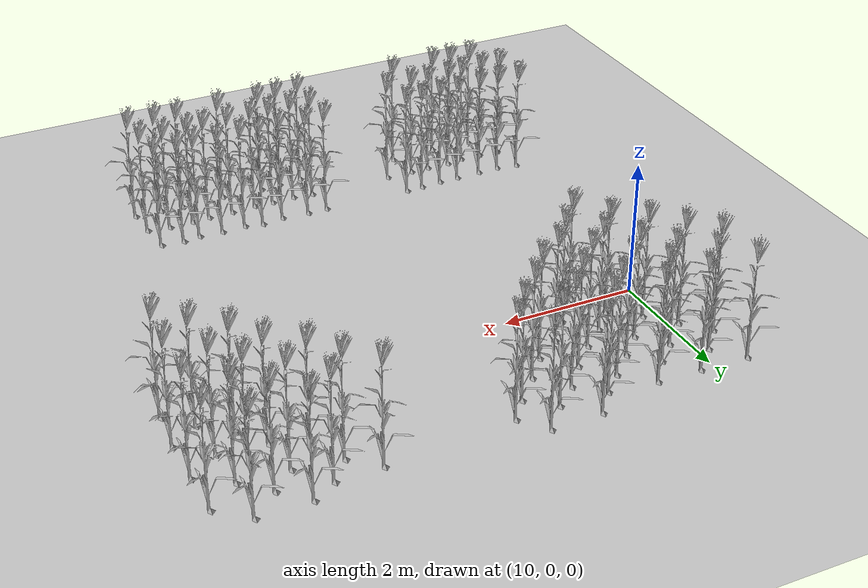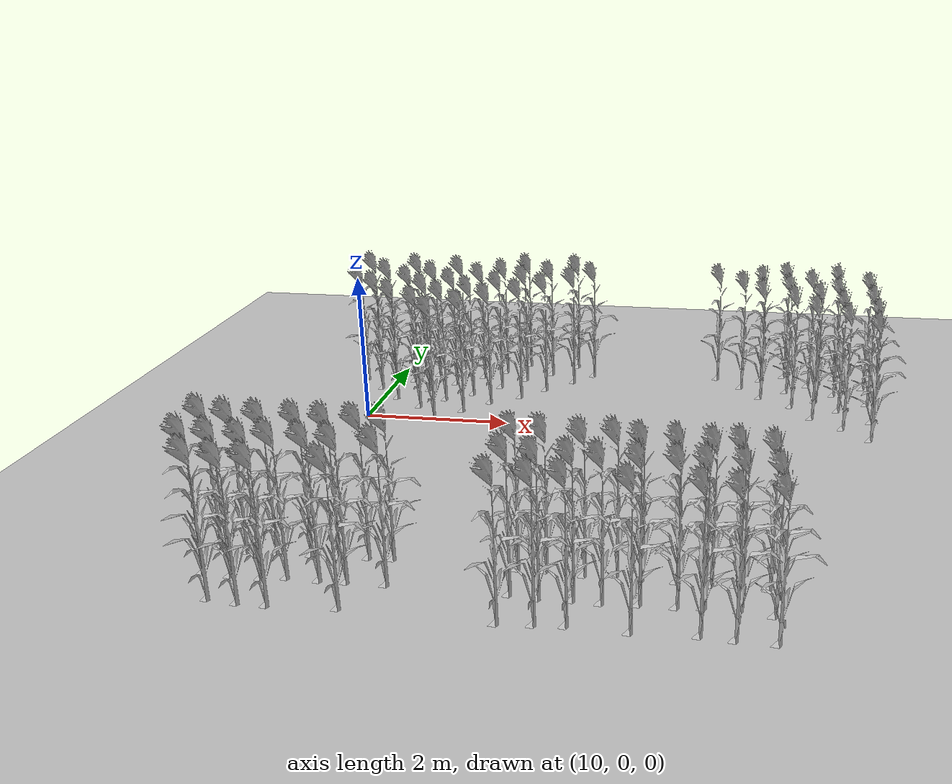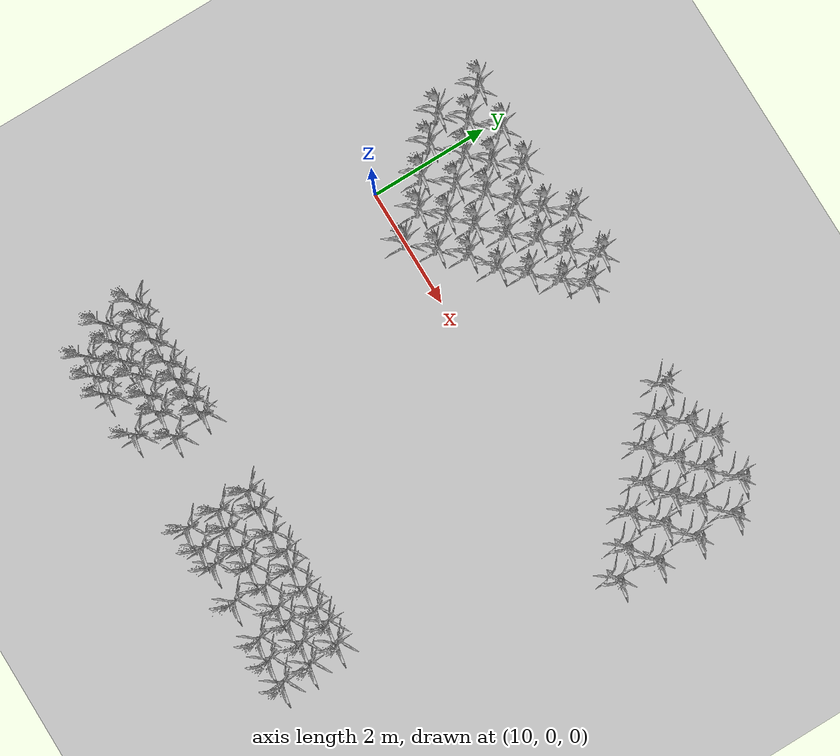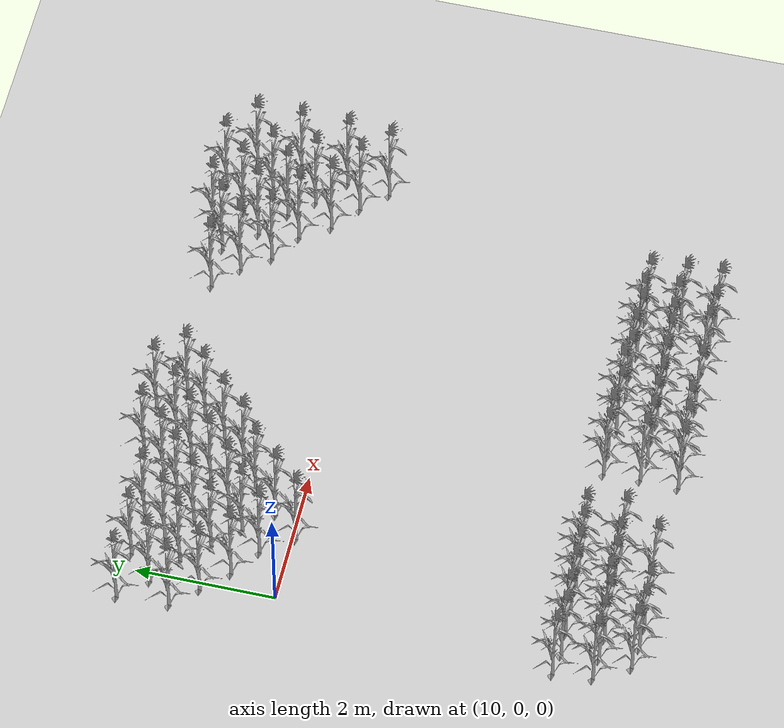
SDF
<sdf version="1.7">
 <world name="farmland_world">
  <model name="ground_plane">
   <static>1</static>
   <link name="link">
    <collision name="collision">
     <geometry><plane><normal>0 0 1</normal><size>40.0 40.0</size></plane></geometry>
     <surface><friction><ode><mu>100</mu><mu2>50</mu2></ode></friction></surface>
    </collision>
    <visual name="visual">
     <cast_shadows>0</cast_shadows>
     <geometry><plane><normal>0 0 1</normal><size>40.0 40.0</size></plane></geometry>
     <material>
      <script><uri>file://media/materials/scripts/gazebo.material</uri><name>Gazebo/Grey</name></script>
     </material>
    </visual>
   </link>
  </model>
  <model name="tree_3_294">
   <static>1</static>
   <link name="link">
    <collision name="collision">
     <geometry><mesh><uri>model://Corn_low_poly/corn.obj</uri><scale>1 1 1</scale></mesh></geometry>
     <surface><friction><ode><mu>100</mu><mu2>50</mu2></ode></friction></surface>
    </collision>
    <visual name="visual">
     <geometry><mesh><uri>model://Corn_low_poly/corn.obj</uri><scale>1 1 1</scale></mesh></geometry>
    </visual>
   </link>
   <pose>10.986549210475614 -0.030008866908524612 0 0 0 0</pose>
  </model>
  <model name="tree_3_295">
   <static>1</static>
   <link name="link">
    <collision name="collision">
     <geometry><mesh><uri>model://Corn_low_poly/corn.obj</uri><scale>1 1 1</scale></mesh></geometry>
     <surface><friction><ode><mu>100</mu><mu2>50</mu2></ode></friction></surface>
    </collision>
    <visual name="visual">
     <geometry><mesh><uri>model://Corn_low_poly/corn.obj</uri><scale>1 1 1</scale></mesh></geometry>
    </visual>
   </link>
   <pose>10.660420517018412 0.41029555244452454 0 0 0 0</pose>
  </model>
  <model name="tree_3_296">
   <static>1</static>
   <link name="link">
    <collision name="collision">
     <geometry><mesh><uri>model://Corn_low_poly/corn.obj</uri><scale>1 1 1</scale></mesh></geometry>
     <surface><friction><ode><mu>100</mu><mu2>50</mu2></ode></friction></surface>
    </collision>
    <visual name="visual">
     <geometry><mesh><uri>model://Corn_low_poly/corn.obj</uri><scale>1 1 1</scale></mesh></geometry>
    </visual>
   </link>
   <pose>10.239976879026237 0.7121741966434493 0 0 0 0</pose>
  </model>
  <model name="tree_3_297">
   <static>1</static>
   <link name="link">
    <collision name="collision">
     <geometry><mesh><uri>model://Corn_low_poly/corn.obj</uri><scale>1 1 1</scale></mesh></geometry>
     <surface><friction><ode><mu>100</mu><mu2>50</mu2></ode></friction></surface>
    </collision>
    <visual name="visual">
     <geometry><mesh><uri>model://Corn_low_poly/corn.obj</uri><scale>1 1 1</scale></mesh></geometry>
    </visual>
   </link>
   <pose>9.89017270644056 1.0724483898673165 0 0 0 0</pose>
  </model>
  <model name="tree_3_298">
   <static>1</static>
   <link name="link">
    <collision name="collision">
     <geometry><mesh><uri>model://Corn_low_poly/corn.obj</uri><scale>1 1 1</scale></mesh></geometry>
     <surface><friction><ode><mu>100</mu><mu2>50</mu2></ode></friction></surface>
    </collision>
    <visual name="visual">
     <geometry><mesh><uri>model://Corn_low_poly/corn.obj</uri><scale>1 1 1</scale></mesh></geometry>
    </visual>
   </link>
   <pose>9.55679092215532 1.423586690843827 0 0 0 0</pose>
  </model>
  <model name="tree_3_339">
   <static>1</static>
   <link name="link">
    <collision name="collision">
     <geometry><mesh><uri>model://Corn_low_poly/corn.obj</uri><scale>1 1 1</scale></mesh></geometry>
     <surface><friction><ode><mu>100</mu><mu2>50</mu2></ode></friction></surface>
    </collision>
    <visual name="visual">
     <geometry><mesh><uri>model://Corn_low_poly/corn.obj</uri><scale>1 1 1</scale></mesh></geometry>
    </visual>
   </link>
   <pose>11.314087523282714 0.3369047057182274 0 0 0 0</pose>
  </model>
  <model name="tree_3_340">
   <static>1</static>
   <link name="link">
    <collision name="collision">
     <geometry><mesh><uri>model://Corn_low_poly/corn.obj</uri><scale>1 1 1</scale></mesh></geometry>
     <surface><friction><ode><mu>100</mu><mu2>50</mu2></ode></friction></surface>
    </collision>
    <visual name="visual">
     <geometry><mesh><uri>model://Corn_low_poly/corn.obj</uri><scale>1 1 1</scale></mesh></geometry>
    </visual>
   </link>
   <pose>10.956666141173441 0.7326038631313926 0 0 0 0</pose>
  </model>
  <model name="tree_3_341">
   <static>1</static>
   <link name="link">
    <collision name="collision">
     <geometry><mesh><uri>model://Corn_low_poly/corn.obj</uri><scale>1 1 1</scale></mesh></geometry>
     <surface><friction><ode><mu>100</mu><mu2>50</mu2></ode></friction></surface>
    </collision>
    <visual name="visual">
     <geometry><mesh><uri>model://Corn_low_poly/corn.obj</uri><scale>1 1 1</scale></mesh></geometry>
    </visual>
   </link>
   <pose>10.615417674221428 1.0919759941359017 0 0 0 0</pose>
  </model>
  <model name="tree_3_342">
   <static>1</static>
   <link name="link">
    <collision name="collision">
     <geometry><mesh><uri>model://Corn_low_poly/corn.obj</uri><scale>1 1 1</scale></mesh></geometry>
     <surface><friction><ode><mu>100</mu><mu2>50</mu2></ode></friction></surface>
    </collision>
    <visual name="visual">
     <geometry><mesh><uri>model://Corn_low_poly/corn.obj</uri><scale>1 1 1</scale></mesh></geometry>
    </visual>
   </link>
   <pose>10.283951952846019 1.4558763011203195 0 0 0 0</pose>
  </model>
  <model name="tree_3_343">
   <static>1</static>
   <link name="link">
    <collision name="collision">
     <geometry><mesh><uri>model://Corn_low_poly/corn.obj</uri><scale>1 1 1</scale></mesh></geometry>
     <surface><friction><ode><mu>100</mu><mu2>50</mu2></ode></friction></surface>
    </collision>
    <visual name="visual">
     <geometry><mesh><uri>model://Corn_low_poly/corn.obj</uri><scale>1 1 1</scale></mesh></geometry>
    </visual>
   </link>
   <pose>9.872938468097058 1.7776033449475355 0 0 0 0</pose>
  </model>
  <model name="tree_3_344">
   <static>1</static>
   <link name="link">
    <collision name="collision">
     <geometry><mesh><uri>model://Corn_low_poly/corn.obj</uri><scale>1 1 1</scale></mesh></geometry>
     <surface><friction><ode><mu>100</mu><mu2>50</mu2></ode></friction></surface>
    </collision>
    <visual name="visual">
     <geometry><mesh><uri>model://Corn_low_poly/corn.obj</uri><scale>1 1 1</scale></mesh></geometry>
    </visual>
   </link>
   <pose>9.523073171963034 2.1662623942834838 0 0 0 0</pose>
  </model>
  <model name="tree_3_384">
   <static>1</static>
   <link name="link">
    <collision name="collision">
     <geometry><mesh><uri>model://Corn_low_poly/corn.obj</uri><scale>1 1 1</scale></mesh></geometry>
     <surface><friction><ode><mu>100</mu><mu2>50</mu2></ode></friction></surface>
    </collision>
    <visual name="visual">
     <geometry><mesh><uri>model://Corn_low_poly/corn.obj</uri><scale>1 1 1</scale></mesh></geometry>
    </visual>
   </link>
   <pose>11.631719376342067 0.7052724618388486 0 0 0 0</pose>
  </model>
  <model name="tree_3_385">
   <static>1</static>
   <link name="link">
    <collision name="collision">
     <geometry><mesh><uri>model://Corn_low_poly/corn.obj</uri><scale>1 1 1</scale></mesh></geometry>
     <surface><friction><ode><mu>100</mu><mu2>50</mu2></ode></friction></surface>
    </collision>
    <visual name="visual">
     <geometry><mesh><uri>model://Corn_low_poly/corn.obj</uri><scale>1 1 1</scale></mesh></geometry>
    </visual>
   </link>
   <pose>11.302284660369168 1.0111965982311883 0 0 0 0</pose>
  </model>
  <model name="tree_3_386">
   <static>1</static>
   <link name="link">
    <collision name="collision">
     <geometry><mesh><uri>model://Corn_low_poly/corn.obj</uri><scale>1 1 1</scale></mesh></geometry>
     <surface><friction><ode><mu>100</mu><mu2>50</mu2></ode></friction></surface>
    </collision>
    <visual name="visual">
     <geometry><mesh><uri>model://Corn_low_poly/corn.obj</uri><scale>1 1 1</scale></mesh></geometry>
    </visual>
   </link>
   <pose>10.948689903663446 1.4207163627651433 0 0 0 0</pose>
  </model>
  <model name="tree_3_387">
   <static>1</static>
   <link name="link">
    <collision name="collision">
     <geometry><mesh><uri>model://Corn_low_poly/corn.obj</uri><scale>1 1 1</scale></mesh></geometry>
     <surface><friction><ode><mu>100</mu><mu2>50</mu2></ode></friction></surface>
    </collision>
    <visual name="visual">
     <geometry><mesh><uri>model://Corn_low_poly/corn.obj</uri><scale>1 1 1</scale></mesh></geometry>
    </visual>
   </link>
   <pose>10.59459887928998 1.7473565881308837 0 0 0 0</pose>
  </model>
  <model name="tree_3_388">
   <static>1</static>
   <link name="link">
    <collision name="collision">
     <geometry><mesh><uri>model://Corn_low_poly/corn.obj</uri><scale>1 1 1</scale></mesh></geometry>
     <surface><friction><ode><mu>100</mu><mu2>50</mu2></ode></friction></surface>
    </collision>
    <visual name="visual">
     <geometry><mesh><uri>model://Corn_low_poly/corn.obj</uri><scale>1 1 1</scale></mesh></geometry>
    </visual>
   </link>
   <pose>10.24522446116887 2.1407802458436422 0 0 0 0</pose>
  </model>
  <model name="tree_3_429">
   <static>1</static>
   <link name="link">
    <collision name="collision">
     <geometry><mesh><uri>model://Corn_low_poly/corn.obj</uri><scale>1 1 1</scale></mesh></geometry>
     <surface><friction><ode><mu>100</mu><mu2>50</mu2></ode></friction></surface>
    </collision>
    <visual name="visual">
     <geometry><mesh><uri>model://Corn_low_poly/corn.obj</uri><scale>1 1 1</scale></mesh></geometry>
    </visual>
   </link>
   <pose>12.030245600856045 0.9770413735197063 0 0 0 0</pose>
  </model>
  <model name="tree_3_430">
   <static>1</static>
   <link name="link">
    <collision name="collision">
     <geometry><mesh><uri>model://Corn_low_poly/corn.obj</uri><scale>1 1 1</scale></mesh></geometry>
     <surface><friction><ode><mu>100</mu><mu2>50</mu2></ode></friction></surface>
    </collision>
    <visual name="visual">
     <geometry><mesh><uri>model://Corn_low_poly/corn.obj</uri><scale>1 1 1</scale></mesh></geometry>
    </visual>
   </link>
   <pose>11.6579132702876 1.3631750970812948 0 0 0 0</pose>
  </model>
  <model name="tree_3_431">
   <static>1</static>
   <link name="link">
    <collision name="collision">
     <geometry><mesh><uri>model://Corn_low_poly/corn.obj</uri><scale>1 1 1</scale></mesh></geometry>
     <surface><friction><ode><mu>100</mu><mu2>50</mu2></ode></friction></surface>
    </collision>
    <visual name="visual">
     <geometry><mesh><uri>model://Corn_low_poly/corn.obj</uri><scale>1 1 1</scale></mesh></geometry>
    </visual>
   </link>
   <pose>11.304991973708699 1.7543355741795101 0 0 0 0</pose>
  </model>
  <model name="tree_3_432">
   <static>1</static>
   <link name="link">
    <collision name="collision">
     <geometry><mesh><uri>model://Corn_low_poly/corn.obj</uri><scale>1 1 1</scale></mesh></geometry>
     <surface><friction><ode><mu>100</mu><mu2>50</mu2></ode></friction></surface>
    </collision>
    <visual name="visual">
     <geometry><mesh><uri>model://Corn_low_poly/corn.obj</uri><scale>1 1 1</scale></mesh></geometry>
    </visual>
   </link>
   <pose>10.901966624572118 2.1236080874952004 0 0 0 0</pose>
  </model>
  <model name="tree_3_474">
   <static>1</static>
   <link name="link">
    <collision name="collision">
     <geometry><mesh><uri>model://Corn_low_poly/corn.obj</uri><scale>1 1 1</scale></mesh></geometry>
     <surface><friction><ode><mu>100</mu><mu2>50</mu2></ode></friction></surface>
    </collision>
    <visual name="visual">
     <geometry><mesh><uri>model://Corn_low_poly/corn.obj</uri><scale>1 1 1</scale></mesh></geometry>
    </visual>
   </link>
   <pose>12.340336761790647 1.3345371867685187 0 0 0 0</pose>
  </model>
  <model name="tree_3_475">
   <static>1</static>
   <link name="link">
    <collision name="collision">
     <geometry><mesh><uri>model://Corn_low_poly/corn.obj</uri><scale>1 1 1</scale></mesh></geometry>
     <surface><friction><ode><mu>100</mu><mu2>50</mu2></ode></friction></surface>
    </collision>
    <visual name="visual">
     <geometry><mesh><uri>model://Corn_low_poly/corn.obj</uri><scale>1 1 1</scale></mesh></geometry>
    </visual>
   </link>
   <pose>11.972208042896883 1.7255200363410705 0 0 0 0</pose>
  </model>
  <model name="tree_3_476">
   <static>1</static>
   <link name="link">
    <collision name="collision">
     <geometry><mesh><uri>model://Corn_low_poly/corn.obj</uri><scale>1 1 1</scale></mesh></geometry>
     <surface><friction><ode><mu>100</mu><mu2>50</mu2></ode></friction></surface>
    </collision>
    <visual name="visual">
     <geometry><mesh><uri>model://Corn_low_poly/corn.obj</uri><scale>1 1 1</scale></mesh></geometry>
    </visual>
   </link>
   <pose>11.604827806348826 2.032348019842762 0 0 0 0</pose>
  </model>
  <model name="tree_3_519">
   <static>1</static>
   <link name="link">
    <collision name="collision">
     <geometry><mesh><uri>model://Corn_low_poly/corn.obj</uri><scale>1 1 1</scale></mesh></geometry>
     <surface><friction><ode><mu>100</mu><mu2>50</mu2></ode></friction></surface>
    </collision>
    <visual name="visual">
     <geometry><mesh><uri>model://Corn_low_poly/corn.obj</uri><scale>1 1 1</scale></mesh></geometry>
    </visual>
   </link>
   <pose>12.69908604815236 1.7064721103701768 0 0 0 0</pose>
  </model>
  <model name="tree_3_520">
   <static>1</static>
   <link name="link">
    <collision name="collision">
     <geometry><mesh><uri>model://Corn_low_poly/corn.obj</uri><scale>1 1 1</scale></mesh></geometry>
     <surface><friction><ode><mu>100</mu><mu2>50</mu2></ode></friction></surface>
    </collision>
    <visual name="visual">
     <geometry><mesh><uri>model://Corn_low_poly/corn.obj</uri><scale>1 1 1</scale></mesh></geometry>
    </visual>
   </link>
   <pose>12.320768811456272 2.0261449863775236 0 0 0 0</pose>
  </model>
  <model name="tree_3_521">
   <static>1</static>
   <link name="link">
    <collision name="collision">
     <geometry><mesh><uri>model://Corn_low_poly/corn.obj</uri><scale>1 1 1</scale></mesh></geometry>
     <surface><friction><ode><mu>100</mu><mu2>50</mu2></ode></friction></surface>
    </collision>
    <visual name="visual">
     <geometry><mesh><uri>model://Corn_low_poly/corn.obj</uri><scale>1 1 1</scale></mesh></geometry>
    </visual>
   </link>
   <pose>11.907414608270912 2.391120540241909 0 0 0 0</pose>
  </model>
  <model name="tree_3_564">
   <static>1</static>
   <link name="link">
    <collision name="collision">
     <geometry><mesh><uri>model://Corn_low_poly/corn.obj</uri><scale>1 1 1</scale></mesh></geometry>
     <surface><friction><ode><mu>100</mu><mu2>50</mu2></ode></friction></surface>
    </collision>
    <visual name="visual">
     <geometry><mesh><uri>model://Corn_low_poly/corn.obj</uri><scale>1 1 1</scale></mesh></geometry>
    </visual>
   </link>
   <pose>12.968101632462385 2.0318406142442984 0 0 0 0</pose>
  </model>
  <model name="tree_3_565">
   <static>1</static>
   <link name="link">
    <collision name="collision">
     <geometry><mesh><uri>model://Corn_low_poly/corn.obj</uri><scale>1 1 1</scale></mesh></geometry>
     <surface><friction><ode><mu>100</mu><mu2>50</mu2></ode></friction></surface>
    </collision>
    <visual name="visual">
     <geometry><mesh><uri>model://Corn_low_poly/corn.obj</uri><scale>1 1 1</scale></mesh></geometry>
    </visual>
   </link>
   <pose>12.667480168246843 2.4100810755144693 0 0 0 0</pose>
  </model>
  <model name="tree_3_609">
   <static>1</static>
   <link name="link">
    <collision name="collision">
     <geometry><mesh><uri>model://Corn_low_poly/corn.obj</uri><scale>1 1 1</scale></mesh></geometry>
     <surface><friction><ode><mu>100</mu><mu2>50</mu2></ode></friction></surface>
    </collision>
    <visual name="visual">
     <geometry><mesh><uri>model://Corn_low_poly/corn.obj</uri><scale>1 1 1</scale></mesh></geometry>
    </visual>
   </link>
   <pose>16.989642538421446 0.0374409853760066 0 0 0 0</pose>
  </model>
  <model name="tree_3_610">
   <static>1</static>
   <link name="link">
    <collision name="collision">
     <geometry><mesh><uri>model://Corn_low_poly/corn.obj</uri><scale>1 1 1</scale></mesh></geometry>
     <surface><friction><ode><mu>100</mu><mu2>50</mu2></ode></friction></surface>
    </collision>
    <visual name="visual">
     <geometry><mesh><uri>model://Corn_low_poly/corn.obj</uri><scale>1 1 1</scale></mesh></geometry>
    </visual>
   </link>
   <pose>16.643349186745475 0.39380406279695196 0 0 0 0</pose>
  </model>
  <model name="tree_3_611">
   <static>1</static>
   <link name="link">
    <collision name="collision">
     <geometry><mesh><uri>model://Corn_low_poly/corn.obj</uri><scale>1 1 1</scale></mesh></geometry>
     <surface><friction><ode><mu>100</mu><mu2>50</mu2></ode></friction></surface>
    </collision>
    <visual name="visual">
     <geometry><mesh><uri>model://Corn_low_poly/corn.obj</uri><scale>1 1 1</scale></mesh></geometry>
    </visual>
   </link>
   <pose>16.23587710086189 0.7218802096498954 0 0 0 0</pose>
  </model>
  <model name="tree_3_612">
   <static>1</static>
   <link name="link">
    <collision name="collision">
     <geometry><mesh><uri>model://Corn_low_poly/corn.obj</uri><scale>1 1 1</scale></mesh></geometry>
     <surface><friction><ode><mu>100</mu><mu2>50</mu2></ode></friction></surface>
    </collision>
    <visual name="visual">
     <geometry><mesh><uri>model://Corn_low_poly/corn.obj</uri><scale>1 1 1</scale></mesh></geometry>
    </visual>
   </link>
   <pose>15.958246764520613 1.1372534573567534 0 0 0 0</pose>
  </model>
  <model name="tree_3_613">
   <static>1</static>
   <link name="link">
    <collision name="collision">
     <geometry><mesh><uri>model://Corn_low_poly/corn.obj</uri><scale>1 1 1</scale></mesh></geometry>
     <surface><friction><ode><mu>100</mu><mu2>50</mu2></ode></friction></surface>
    </collision>
    <visual name="visual">
     <geometry><mesh><uri>model://Corn_low_poly/corn.obj</uri><scale>1 1 1</scale></mesh></geometry>
    </visual>
   </link>
   <pose>15.514395837186148 1.4311794196533745 0 0 0 0</pose>
  </model>
  <model name="tree_3_614">
   <static>1</static>
   <link name="link">
    <collision name="collision">
     <geometry><mesh><uri>model://Corn_low_poly/corn.obj</uri><scale>1 1 1</scale></mesh></geometry>
     <surface><friction><ode><mu>100</mu><mu2>50</mu2></ode></friction></surface>
    </collision>
    <visual name="visual">
     <geometry><mesh><uri>model://Corn_low_poly/corn.obj</uri><scale>1 1 1</scale></mesh></geometry>
    </visual>
   </link>
   <pose>15.228900002308265 1.8259557322426025 0 0 0 0</pose>
  </model>
  <model name="tree_3_615">
   <static>1</static>
   <link name="link">
    <collision name="collision">
     <geometry><mesh><uri>model://Corn_low_poly/corn.obj</uri><scale>1 1 1</scale></mesh></geometry>
     <surface><friction><ode><mu>100</mu><mu2>50</mu2></ode></friction></surface>
    </collision>
    <visual name="visual">
     <geometry><mesh><uri>model://Corn_low_poly/corn.obj</uri><scale>1 1 1</scale></mesh></geometry>
    </visual>
   </link>
   <pose>14.85804366647292 2.1665129079683356 0 0 0 0</pose>
  </model>
  <model name="tree_3_654">
   <static>1</static>
   <link name="link">
    <collision name="collision">
     <geometry><mesh><uri>model://Corn_low_poly/corn.obj</uri><scale>1 1 1</scale></mesh></geometry>
     <surface><friction><ode><mu>100</mu><mu2>50</mu2></ode></friction></surface>
    </collision>
    <visual name="visual">
     <geometry><mesh><uri>model://Corn_low_poly/corn.obj</uri><scale>1 1 1</scale></mesh></geometry>
    </visual>
   </link>
   <pose>17.04681449260592 0.6724899719747716 0 0 0 0</pose>
  </model>
  <model name="tree_3_655">
   <static>1</static>
   <link name="link">
    <collision name="collision">
     <geometry><mesh><uri>model://Corn_low_poly/corn.obj</uri><scale>1 1 1</scale></mesh></geometry>
     <surface><friction><ode><mu>100</mu><mu2>50</mu2></ode></friction></surface>
    </collision>
    <visual name="visual">
     <geometry><mesh><uri>model://Corn_low_poly/corn.obj</uri><scale>1 1 1</scale></mesh></geometry>
    </visual>
   </link>
   <pose>16.616463117005026 1.049432369661947 0 0 0 0</pose>
  </model>
  <model name="tree_3_656">
   <static>1</static>
   <link name="link">
    <collision name="collision">
     <geometry><mesh><uri>model://Corn_low_poly/corn.obj</uri><scale>1 1 1</scale></mesh></geometry>
     <surface><friction><ode><mu>100</mu><mu2>50</mu2></ode></friction></surface>
    </collision>
    <visual name="visual">
     <geometry><mesh><uri>model://Corn_low_poly/corn.obj</uri><scale>1 1 1</scale></mesh></geometry>
    </visual>
   </link>
   <pose>16.31332799461018 1.3886849829898482 0 0 0 0</pose>
  </model>
  <model name="tree_3_657">
   <static>1</static>
   <link name="link">
    <collision name="collision">
     <geometry><mesh><uri>model://Corn_low_poly/corn.obj</uri><scale>1 1 1</scale></mesh></geometry>
     <surface><friction><ode><mu>100</mu><mu2>50</mu2></ode></friction></surface>
    </collision>
    <visual name="visual">
     <geometry><mesh><uri>model://Corn_low_poly/corn.obj</uri><scale>1 1 1</scale></mesh></geometry>
    </visual>
   </link>
   <pose>15.89667361551332 1.7258624997668766 0 0 0 0</pose>
  </model>
  <model name="tree_3_658">
   <static>1</static>
   <link name="link">
    <collision name="collision">
     <geometry><mesh><uri>model://Corn_low_poly/corn.obj</uri><scale>1 1 1</scale></mesh></geometry>
     <surface><friction><ode><mu>100</mu><mu2>50</mu2></ode></friction></surface>
    </collision>
    <visual name="visual">
     <geometry><mesh><uri>model://Corn_low_poly/corn.obj</uri><scale>1 1 1</scale></mesh></geometry>
    </visual>
   </link>
   <pose>15.517304114823244 2.1702092053536237 0 0 0 0</pose>
  </model>
  <model name="tree_3_698">
   <static>1</static>
   <link name="link">
    <collision name="collision">
     <geometry><mesh><uri>model://Corn_low_poly/corn.obj</uri><scale>1 1 1</scale></mesh></geometry>
     <surface><friction><ode><mu>100</mu><mu2>50</mu2></ode></friction></surface>
    </collision>
    <visual name="visual">
     <geometry><mesh><uri>model://Corn_low_poly/corn.obj</uri><scale>1 1 1</scale></mesh></geometry>
    </visual>
   </link>
   <pose>17.04761321210073 1.3615903992251308 0 0 0 0</pose>
  </model>
  <model name="tree_3_699">
   <static>1</static>
   <link name="link">
    <collision name="collision">
     <geometry><mesh><uri>model://Corn_low_poly/corn.obj</uri><scale>1 1 1</scale></mesh></geometry>
     <surface><friction><ode><mu>100</mu><mu2>50</mu2></ode></friction></surface>
    </collision>
    <visual name="visual">
     <geometry><mesh><uri>model://Corn_low_poly/corn.obj</uri><scale>1 1 1</scale></mesh></geometry>
    </visual>
   </link>
   <pose>16.588270402823564 1.6750380677282046 0 0 0 0</pose>
  </model>
  <model name="tree_3_700">
   <static>1</static>
   <link name="link">
    <collision name="collision">
     <geometry><mesh><uri>model://Corn_low_poly/corn.obj</uri><scale>1 1 1</scale></mesh></geometry>
     <surface><friction><ode><mu>100</mu><mu2>50</mu2></ode></friction></surface>
    </collision>
    <visual name="visual">
     <geometry><mesh><uri>model://Corn_low_poly/corn.obj</uri><scale>1 1 1</scale></mesh></geometry>
    </visual>
   </link>
   <pose>16.225714797592868 2.030400940456919 0 0 0 0</pose>
  </model>
  <model name="tree_3_701">
   <static>1</static>
   <link name="link">
    <collision name="collision">
     <geometry><mesh><uri>model://Corn_low_poly/corn.obj</uri><scale>1 1 1</scale></mesh></geometry>
     <surface><friction><ode><mu>100</mu><mu2>50</mu2></ode></friction></surface>
    </collision>
    <visual name="visual">
     <geometry><mesh><uri>model://Corn_low_poly/corn.obj</uri><scale>1 1 1</scale></mesh></geometry>
    </visual>
   </link>
   <pose>15.873011245077258 2.3867161180966594 0 0 0 0</pose>
  </model>
  <model name="tree_3_741">
   <static>1</static>
   <link name="link">
    <collision name="collision">
     <geometry><mesh><uri>model://Corn_low_poly/corn.obj</uri><scale>1 1 1</scale></mesh></geometry>
     <surface><friction><ode><mu>100</mu><mu2>50</mu2></ode></friction></surface>
    </collision>
    <visual name="visual">
     <geometry><mesh><uri>model://Corn_low_poly/corn.obj</uri><scale>1 1 1</scale></mesh></geometry>
    </visual>
   </link>
   <pose>17.041318724552696 2.0194186896500783 0 0 0 0</pose>
  </model>
  <model name="tree_3_742">
   <static>1</static>
   <link name="link">
    <collision name="collision">
     <geometry><mesh><uri>model://Corn_low_poly/corn.obj</uri><scale>1 1 1</scale></mesh></geometry>
     <surface><friction><ode><mu>100</mu><mu2>50</mu2></ode></friction></surface>
    </collision>
    <visual name="visual">
     <geometry><mesh><uri>model://Corn_low_poly/corn.obj</uri><scale>1 1 1</scale></mesh></geometry>
    </visual>
   </link>
   <pose>16.620898242607343 2.3817280629551103 0 0 0 0</pose>
  </model>
  <model name="tree_3_1189">
   <static>1</static>
   <link name="link">
    <collision name="collision">
     <geometry><mesh><uri>model://Corn_low_poly/corn.obj</uri><scale>1 1 1</scale></mesh></geometry>
     <surface><friction><ode><mu>100</mu><mu2>50</mu2></ode></friction></surface>
    </collision>
    <visual name="visual">
     <geometry><mesh><uri>model://Corn_low_poly/corn.obj</uri><scale>1 1 1</scale></mesh></geometry>
    </visual>
   </link>
   <pose>9.667342430457392 -3.966406001257993 0 0 0 0</pose>
  </model>
  <model name="tree_3_1190">
   <static>1</static>
   <link name="link">
    <collision name="collision">
     <geometry><mesh><uri>model://Corn_low_poly/corn.obj</uri><scale>1 1 1</scale></mesh></geometry>
     <surface><friction><ode><mu>100</mu><mu2>50</mu2></ode></friction></surface>
    </collision>
    <visual name="visual">
     <geometry><mesh><uri>model://Corn_low_poly/corn.obj</uri><scale>1 1 1</scale></mesh></geometry>
    </visual>
   </link>
   <pose>9.719830289917391 -4.520574260678576 0 0 0 0</pose>
  </model>
  <model name="tree_3_1215">
   <static>1</static>
   <link name="link">
    <collision name="collision">
     <geometry><mesh><uri>model://Corn_low_poly/corn.obj</uri><scale>1 1 1</scale></mesh></geometry>
     <surface><friction><ode><mu>100</mu><mu2>50</mu2></ode></friction></surface>
    </collision>
    <visual name="visual">
     <geometry><mesh><uri>model://Corn_low_poly/corn.obj</uri><scale>1 1 1</scale></mesh></geometry>
    </visual>
   </link>
   <pose>9.991234515112113 -4.0204200766856095 0 0 0 0</pose>
  </model>
  <model name="tree_3_1216">
   <static>1</static>
   <link name="link">
    <collision name="collision">
     <geometry><mesh><uri>model://Corn_low_poly/corn.obj</uri><scale>1 1 1</scale></mesh></geometry>
     <surface><friction><ode><mu>100</mu><mu2>50</mu2></ode></friction></surface>
    </collision>
    <visual name="visual">
     <geometry><mesh><uri>model://Corn_low_poly/corn.obj</uri><scale>1 1 1</scale></mesh></geometry>
    </visual>
   </link>
   <pose>10.036781936729597 -4.5403006852353585 0 0 0 0</pose>
  </model>
  <model name="tree_3_1217">
   <static>1</static>
   <link name="link">
    <collision name="collision">
     <geometry><mesh><uri>model://Corn_low_poly/corn.obj</uri><scale>1 1 1</scale></mesh></geometry>
     <surface><friction><ode><mu>100</mu><mu2>50</mu2></ode></friction></surface>
    </collision>
    <visual name="visual">
     <geometry><mesh><uri>model://Corn_low_poly/corn.obj</uri><scale>1 1 1</scale></mesh></geometry>
    </visual>
   </link>
   <pose>10.003250176973939 -5.0057739395951035 0 0 0 0</pose>
  </model>
  <model name="tree_3_1241">
   <static>1</static>
   <link name="link">
    <collision name="collision">
     <geometry><mesh><uri>model://Corn_low_poly/corn.obj</uri><scale>1 1 1</scale></mesh></geometry>
     <surface><friction><ode><mu>100</mu><mu2>50</mu2></ode></friction></surface>
    </collision>
    <visual name="visual">
     <geometry><mesh><uri>model://Corn_low_poly/corn.obj</uri><scale>1 1 1</scale></mesh></geometry>
    </visual>
   </link>
   <pose>10.327515010918809 -4.009051171249717 0 0 0 0</pose>
  </model>
  <model name="tree_3_1242">
   <static>1</static>
   <link name="link">
    <collision name="collision">
     <geometry><mesh><uri>model://Corn_low_poly/corn.obj</uri><scale>1 1 1</scale></mesh></geometry>
     <surface><friction><ode><mu>100</mu><mu2>50</mu2></ode></friction></surface>
    </collision>
    <visual name="visual">
     <geometry><mesh><uri>model://Corn_low_poly/corn.obj</uri><scale>1 1 1</scale></mesh></geometry>
    </visual>
   </link>
   <pose>10.3700181733164 -4.546909369840842 0 0 0 0</pose>
  </model>
  <model name="tree_3_1243">
   <static>1</static>
   <link name="link">
    <collision name="collision">
     <geometry><mesh><uri>model://Corn_low_poly/corn.obj</uri><scale>1 1 1</scale></mesh></geometry>
     <surface><friction><ode><mu>100</mu><mu2>50</mu2></ode></friction></surface>
    </collision>
    <visual name="visual">
     <geometry><mesh><uri>model://Corn_low_poly/corn.obj</uri><scale>1 1 1</scale></mesh></geometry>
    </visual>
   </link>
   <pose>10.334752305223208 -5.044098913925435 0 0 0 0</pose>
  </model>
  <model name="tree_3_1267">
   <static>1</static>
   <link name="link">
    <collision name="collision">
     <geometry><mesh><uri>model://Corn_low_poly/corn.obj</uri><scale>1 1 1</scale></mesh></geometry>
     <surface><friction><ode><mu>100</mu><mu2>50</mu2></ode></friction></surface>
    </collision>
    <visual name="visual">
     <geometry><mesh><uri>model://Corn_low_poly/corn.obj</uri><scale>1 1 1</scale></mesh></geometry>
    </visual>
   </link>
   <pose>10.717752151737004 -3.999931507918698 0 0 0 0</pose>
  </model>
  <model name="tree_3_1268">
   <static>1</static>
   <link name="link">
    <collision name="collision">
     <geometry><mesh><uri>model://Corn_low_poly/corn.obj</uri><scale>1 1 1</scale></mesh></geometry>
     <surface><friction><ode><mu>100</mu><mu2>50</mu2></ode></friction></surface>
    </collision>
    <visual name="visual">
     <geometry><mesh><uri>model://Corn_low_poly/corn.obj</uri><scale>1 1 1</scale></mesh></geometry>
    </visual>
   </link>
   <pose>10.638346131585 -4.494870413613792 0 0 0 0</pose>
  </model>
  <model name="tree_3_1269">
   <static>1</static>
   <link name="link">
    <collision name="collision">
     <geometry><mesh><uri>model://Corn_low_poly/corn.obj</uri><scale>1 1 1</scale></mesh></geometry>
     <surface><friction><ode><mu>100</mu><mu2>50</mu2></ode></friction></surface>
    </collision>
    <visual name="visual">
     <geometry><mesh><uri>model://Corn_low_poly/corn.obj</uri><scale>1 1 1</scale></mesh></geometry>
    </visual>
   </link>
   <pose>10.646884357011773 -5.0447326816205535 0 0 0 0</pose>
  </model>
  <model name="tree_3_1293">
   <static>1</static>
   <link name="link">
    <collision name="collision">
     <geometry><mesh><uri>model://Corn_low_poly/corn.obj</uri><scale>1 1 1</scale></mesh></geometry>
     <surface><friction><ode><mu>100</mu><mu2>50</mu2></ode></friction></surface>
    </collision>
    <visual name="visual">
     <geometry><mesh><uri>model://Corn_low_poly/corn.obj</uri><scale>1 1 1</scale></mesh></geometry>
    </visual>
   </link>
   <pose>11.026426750121654 -3.998619615368109 0 0 0 0</pose>
  </model>
  <model name="tree_3_1294">
   <static>1</static>
   <link name="link">
    <collision name="collision">
     <geometry><mesh><uri>model://Corn_low_poly/corn.obj</uri><scale>1 1 1</scale></mesh></geometry>
     <surface><friction><ode><mu>100</mu><mu2>50</mu2></ode></friction></surface>
    </collision>
    <visual name="visual">
     <geometry><mesh><uri>model://Corn_low_poly/corn.obj</uri><scale>1 1 1</scale></mesh></geometry>
    </visual>
   </link>
   <pose>10.994456256927412 -4.504567193947425 0 0 0 0</pose>
  </model>
  <model name="tree_3_1319">
   <static>1</static>
   <link name="link">
    <collision name="collision">
     <geometry><mesh><uri>model://Corn_low_poly/corn.obj</uri><scale>1 1 1</scale></mesh></geometry>
     <surface><friction><ode><mu>100</mu><mu2>50</mu2></ode></friction></surface>
    </collision>
    <visual name="visual">
     <geometry><mesh><uri>model://Corn_low_poly/corn.obj</uri><scale>1 1 1</scale></mesh></geometry>
    </visual>
   </link>
   <pose>11.352963391535443 -3.9740973368430157 0 0 0 0</pose>
  </model>
  <model name="tree_3_1320">
   <static>1</static>
   <link name="link">
    <collision name="collision">
     <geometry><mesh><uri>model://Corn_low_poly/corn.obj</uri><scale>1 1 1</scale></mesh></geometry>
     <surface><friction><ode><mu>100</mu><mu2>50</mu2></ode></friction></surface>
    </collision>
    <visual name="visual">
     <geometry><mesh><uri>model://Corn_low_poly/corn.obj</uri><scale>1 1 1</scale></mesh></geometry>
    </visual>
   </link>
   <pose>11.287591544367343 -4.499573852249097 0 0 0 0</pose>
  </model>
  <model name="tree_3_1321">
   <static>1</static>
   <link name="link">
    <collision name="collision">
     <geometry><mesh><uri>model://Corn_low_poly/corn.obj</uri><scale>1 1 1</scale></mesh></geometry>
     <surface><friction><ode><mu>100</mu><mu2>50</mu2></ode></friction></surface>
    </collision>
    <visual name="visual">
     <geometry><mesh><uri>model://Corn_low_poly/corn.obj</uri><scale>1 1 1</scale></mesh></geometry>
    </visual>
   </link>
   <pose>11.375781333246854 -5.003100588501616 0 0 0 0</pose>
  </model>
  <model name="tree_3_1345">
   <static>1</static>
   <link name="link">
    <collision name="collision">
     <geometry><mesh><uri>model://Corn_low_poly/corn.obj</uri><scale>1 1 1</scale></mesh></geometry>
     <surface><friction><ode><mu>100</mu><mu2>50</mu2></ode></friction></surface>
    </collision>
    <visual name="visual">
     <geometry><mesh><uri>model://Corn_low_poly/corn.obj</uri><scale>1 1 1</scale></mesh></geometry>
    </visual>
   </link>
   <pose>11.623435681893824 -3.9592063999860994 0 0 0 0</pose>
  </model>
  <model name="tree_3_1346">
   <static>1</static>
   <link name="link">
    <collision name="collision">
     <geometry><mesh><uri>model://Corn_low_poly/corn.obj</uri><scale>1 1 1</scale></mesh></geometry>
     <surface><friction><ode><mu>100</mu><mu2>50</mu2></ode></friction></surface>
    </collision>
    <visual name="visual">
     <geometry><mesh><uri>model://Corn_low_poly/corn.obj</uri><scale>1 1 1</scale></mesh></geometry>
    </visual>
   </link>
   <pose>11.712006376585633 -4.494233424854497 0 0 0 0</pose>
  </model>
  <model name="tree_3_1371">
   <static>1</static>
   <link name="link">
    <collision name="collision">
     <geometry><mesh><uri>model://Corn_low_poly/corn.obj</uri><scale>1 1 1</scale></mesh></geometry>
     <surface><friction><ode><mu>100</mu><mu2>50</mu2></ode></friction></surface>
    </collision>
    <visual name="visual">
     <geometry><mesh><uri>model://Corn_low_poly/corn.obj</uri><scale>1 1 1</scale></mesh></geometry>
    </visual>
   </link>
   <pose>12.988854740565385 -3.986793804865087 0 0 0 0</pose>
  </model>
  <model name="tree_3_1372">
   <static>1</static>
   <link name="link">
    <collision name="collision">
     <geometry><mesh><uri>model://Corn_low_poly/corn.obj</uri><scale>1 1 1</scale></mesh></geometry>
     <surface><friction><ode><mu>100</mu><mu2>50</mu2></ode></friction></surface>
    </collision>
    <visual name="visual">
     <geometry><mesh><uri>model://Corn_low_poly/corn.obj</uri><scale>1 1 1</scale></mesh></geometry>
    </visual>
   </link>
   <pose>13.007657953288046 -4.508290383884265 0 0 0 0</pose>
  </model>
  <model name="tree_3_1373">
   <static>1</static>
   <link name="link">
    <collision name="collision">
     <geometry><mesh><uri>model://Corn_low_poly/corn.obj</uri><scale>1 1 1</scale></mesh></geometry>
     <surface><friction><ode><mu>100</mu><mu2>50</mu2></ode></friction></surface>
    </collision>
    <visual name="visual">
     <geometry><mesh><uri>model://Corn_low_poly/corn.obj</uri><scale>1 1 1</scale></mesh></geometry>
    </visual>
   </link>
   <pose>12.990560721337015 -5.0556326540575265 0 0 0 0</pose>
  </model>
  <model name="tree_3_1397">
   <static>1</static>
   <link name="link">
    <collision name="collision">
     <geometry><mesh><uri>model://Corn_low_poly/corn.obj</uri><scale>1 1 1</scale></mesh></geometry>
     <surface><friction><ode><mu>100</mu><mu2>50</mu2></ode></friction></surface>
    </collision>
    <visual name="visual">
     <geometry><mesh><uri>model://Corn_low_poly/corn.obj</uri><scale>1 1 1</scale></mesh></geometry>
    </visual>
   </link>
   <pose>13.294473581435465 -3.9845195186678963 0 0 0 0</pose>
  </model>
  <model name="tree_3_1398">
   <static>1</static>
   <link name="link">
    <collision name="collision">
     <geometry><mesh><uri>model://Corn_low_poly/corn.obj</uri><scale>1 1 1</scale></mesh></geometry>
     <surface><friction><ode><mu>100</mu><mu2>50</mu2></ode></friction></surface>
    </collision>
    <visual name="visual">
     <geometry><mesh><uri>model://Corn_low_poly/corn.obj</uri><scale>1 1 1</scale></mesh></geometry>
    </visual>
   </link>
   <pose>13.312606191518483 -4.545876888375972 0 0 0 0</pose>
  </model>
  <model name="tree_3_1399">
   <static>1</static>
   <link name="link">
    <collision name="collision">
     <geometry><mesh><uri>model://Corn_low_poly/corn.obj</uri><scale>1 1 1</scale></mesh></geometry>
     <surface><friction><ode><mu>100</mu><mu2>50</mu2></ode></friction></surface>
    </collision>
    <visual name="visual">
     <geometry><mesh><uri>model://Corn_low_poly/corn.obj</uri><scale>1 1 1</scale></mesh></geometry>
    </visual>
   </link>
   <pose>13.355330192310054 -5.026853005522489 0 0 0 0</pose>
  </model>
  <model name="tree_3_1423">
   <static>1</static>
   <link name="link">
    <collision name="collision">
     <geometry><mesh><uri>model://Corn_low_poly/corn.obj</uri><scale>1 1 1</scale></mesh></geometry>
     <surface><friction><ode><mu>100</mu><mu2>50</mu2></ode></friction></surface>
    </collision>
    <visual name="visual">
     <geometry><mesh><uri>model://Corn_low_poly/corn.obj</uri><scale>1 1 1</scale></mesh></geometry>
    </visual>
   </link>
   <pose>13.706224260582587 -4.018039976080481 0 0 0 0</pose>
  </model>
  <model name="tree_3_1424">
   <static>1</static>
   <link name="link">
    <collision name="collision">
     <geometry><mesh><uri>model://Corn_low_poly/corn.obj</uri><scale>1 1 1</scale></mesh></geometry>
     <surface><friction><ode><mu>100</mu><mu2>50</mu2></ode></friction></surface>
    </collision>
    <visual name="visual">
     <geometry><mesh><uri>model://Corn_low_poly/corn.obj</uri><scale>1 1 1</scale></mesh></geometry>
    </visual>
   </link>
   <pose>13.663417743093781 -4.52921625396151 0 0 0 0</pose>
  </model>
  <model name="tree_3_1425">
   <static>1</static>
   <link name="link">
    <collision name="collision">
     <geometry><mesh><uri>model://Corn_low_poly/corn.obj</uri><scale>1 1 1</scale></mesh></geometry>
     <surface><friction><ode><mu>100</mu><mu2>50</mu2></ode></friction></surface>
    </collision>
    <visual name="visual">
     <geometry><mesh><uri>model://Corn_low_poly/corn.obj</uri><scale>1 1 1</scale></mesh></geometry>
    </visual>
   </link>
   <pose>13.669123445715556 -5.00384295472379 0 0 0 0</pose>
  </model>
  <model name="tree_3_1449">
   <static>1</static>
   <link name="link">
    <collision name="collision">
     <geometry><mesh><uri>model://Corn_low_poly/corn.obj</uri><scale>1 1 1</scale></mesh></geometry>
     <surface><friction><ode><mu>100</mu><mu2>50</mu2></ode></friction></surface>
    </collision>
    <visual name="visual">
     <geometry><mesh><uri>model://Corn_low_poly/corn.obj</uri><scale>1 1 1</scale></mesh></geometry>
    </visual>
   </link>
   <pose>14.042028068805912 -3.9705051982261574 0 0 0 0</pose>
  </model>
  <model name="tree_3_1450">
   <static>1</static>
   <link name="link">
    <collision name="collision">
     <geometry><mesh><uri>model://Corn_low_poly/corn.obj</uri><scale>1 1 1</scale></mesh></geometry>
     <surface><friction><ode><mu>100</mu><mu2>50</mu2></ode></friction></surface>
    </collision>
    <visual name="visual">
     <geometry><mesh><uri>model://Corn_low_poly/corn.obj</uri><scale>1 1 1</scale></mesh></geometry>
    </visual>
   </link>
   <pose>13.956905234569021 -4.544456268839065 0 0 0 0</pose>
  </model>
  <model name="tree_3_1475">
   <static>1</static>
   <link name="link">
    <collision name="collision">
     <geometry><mesh><uri>model://Corn_low_poly/corn.obj</uri><scale>1 1 1</scale></mesh></geometry>
     <surface><friction><ode><mu>100</mu><mu2>50</mu2></ode></friction></surface>
    </collision>
    <visual name="visual">
     <geometry><mesh><uri>model://Corn_low_poly/corn.obj</uri><scale>1 1 1</scale></mesh></geometry>
    </visual>
   </link>
   <pose>14.312515690829725 -4.031807459493948 0 0 0 0</pose>
  </model>
  <model name="tree_3_1476">
   <static>1</static>
   <link name="link">
    <collision name="collision">
     <geometry><mesh><uri>model://Corn_low_poly/corn.obj</uri><scale>1 1 1</scale></mesh></geometry>
     <surface><friction><ode><mu>100</mu><mu2>50</mu2></ode></friction></surface>
    </collision>
    <visual name="visual">
     <geometry><mesh><uri>model://Corn_low_poly/corn.obj</uri><scale>1 1 1</scale></mesh></geometry>
    </visual>
   </link>
   <pose>14.334534348607079 -4.5171998217335725 0 0 0 0</pose>
  </model>
  <model name="tree_3_1477">
   <static>1</static>
   <link name="link">
    <collision name="collision">
     <geometry><mesh><uri>model://Corn_low_poly/corn.obj</uri><scale>1 1 1</scale></mesh></geometry>
     <surface><friction><ode><mu>100</mu><mu2>50</mu2></ode></friction></surface>
    </collision>
    <visual name="visual">
     <geometry><mesh><uri>model://Corn_low_poly/corn.obj</uri><scale>1 1 1</scale></mesh></geometry>
    </visual>
   </link>
   <pose>14.300174170900688 -5.033032968181543 0 0 0 0</pose>
  </model>
  <model name="tree_3_1501">
   <static>1</static>
   <link name="link">
    <collision name="collision">
     <geometry><mesh><uri>model://Corn_low_poly/corn.obj</uri><scale>1 1 1</scale></mesh></geometry>
     <surface><friction><ode><mu>100</mu><mu2>50</mu2></ode></friction></surface>
    </collision>
    <visual name="visual">
     <geometry><mesh><uri>model://Corn_low_poly/corn.obj</uri><scale>1 1 1</scale></mesh></geometry>
    </visual>
   </link>
   <pose>14.67717024186706 -4.017533494160652 0 0 0 0</pose>
  </model>
  <model name="tree_3_1502">
   <static>1</static>
   <link name="link">
    <collision name="collision">
     <geometry><mesh><uri>model://Corn_low_poly/corn.obj</uri><scale>1 1 1</scale></mesh></geometry>
     <surface><friction><ode><mu>100</mu><mu2>50</mu2></ode></friction></surface>
    </collision>
    <visual name="visual">
     <geometry><mesh><uri>model://Corn_low_poly/corn.obj</uri><scale>1 1 1</scale></mesh></geometry>
    </visual>
   </link>
   <pose>14.71162267280138 -4.516096227888856 0 0 0 0</pose>
  </model>
  <model name="tree_3_1527">
   <static>1</static>
   <link name="link">
    <collision name="collision">
     <geometry><mesh><uri>model://Corn_low_poly/corn.obj</uri><scale>1 1 1</scale></mesh></geometry>
     <surface><friction><ode><mu>100</mu><mu2>50</mu2></ode></friction></surface>
    </collision>
    <visual name="visual">
     <geometry><mesh><uri>model://Corn_low_poly/corn.obj</uri><scale>1 1 1</scale></mesh></geometry>
    </visual>
   </link>
   <pose>15.032022209135082 -4.0417499815330675 0 0 0 0</pose>
  </model>
  <model name="tree_3_1528">
   <static>1</static>
   <link name="link">
    <collision name="collision">
     <geometry><mesh><uri>model://Corn_low_poly/corn.obj</uri><scale>1 1 1</scale></mesh></geometry>
     <surface><friction><ode><mu>100</mu><mu2>50</mu2></ode></friction></surface>
    </collision>
    <visual name="visual">
     <geometry><mesh><uri>model://Corn_low_poly/corn.obj</uri><scale>1 1 1</scale></mesh></geometry>
    </visual>
   </link>
   <pose>14.981736961675612 -4.49173430886041 0 0 0 0</pose>
  </model>
  <model name="tree_3_1529">
   <static>1</static>
   <link name="link">
    <collision name="collision">
     <geometry><mesh><uri>model://Corn_low_poly/corn.obj</uri><scale>1 1 1</scale></mesh></geometry>
     <surface><friction><ode><mu>100</mu><mu2>50</mu2></ode></friction></surface>
    </collision>
    <visual name="visual">
     <geometry><mesh><uri>model://Corn_low_poly/corn.obj</uri><scale>1 1 1</scale></mesh></geometry>
    </visual>
   </link>
   <pose>14.966294739340647 -5.002579882961303 0 0 0 0</pose>
  </model>
  <model name="tree_3_1553">
   <static>1</static>
   <link name="link">
    <collision name="collision">
     <geometry><mesh><uri>model://Corn_low_poly/corn.obj</uri><scale>1 1 1</scale></mesh></geometry>
     <surface><friction><ode><mu>100</mu><mu2>50</mu2></ode></friction></surface>
    </collision>
    <visual name="visual">
     <geometry><mesh><uri>model://Corn_low_poly/corn.obj</uri><scale>1 1 1</scale></mesh></geometry>
    </visual>
   </link>
   <pose>15.29371060827176 -4.00362731966871 0 0 0 0</pose>
  </model>
  <model name="tree_3_1554">
   <static>1</static>
   <link name="link">
    <collision name="collision">
     <geometry><mesh><uri>model://Corn_low_poly/corn.obj</uri><scale>1 1 1</scale></mesh></geometry>
     <surface><friction><ode><mu>100</mu><mu2>50</mu2></ode></friction></surface>
    </collision>
    <visual name="visual">
     <geometry><mesh><uri>model://Corn_low_poly/corn.obj</uri><scale>1 1 1</scale></mesh></geometry>
    </visual>
   </link>
   <pose>15.346939023521545 -4.489005803495775 0 0 0 0</pose>
  </model>
  <model name="tree_3_1555">
   <static>1</static>
   <link name="link">
    <collision name="collision">
     <geometry><mesh><uri>model://Corn_low_poly/corn.obj</uri><scale>1 1 1</scale></mesh></geometry>
     <surface><friction><ode><mu>100</mu><mu2>50</mu2></ode></friction></surface>
    </collision>
    <visual name="visual">
     <geometry><mesh><uri>model://Corn_low_poly/corn.obj</uri><scale>1 1 1</scale></mesh></geometry>
    </visual>
   </link>
   <pose>15.30708417880348 -5.027942481727171 0 0 0 0</pose>
  </model>
  <model name="tree_3_1579">
   <static>1</static>
   <link name="link">
    <collision name="collision">
     <geometry><mesh><uri>model://Corn_low_poly/corn.obj</uri><scale>1 1 1</scale></mesh></geometry>
     <surface><friction><ode><mu>100</mu><mu2>50</mu2></ode></friction></surface>
    </collision>
    <visual name="visual">
     <geometry><mesh><uri>model://Corn_low_poly/corn.obj</uri><scale>1 1 1</scale></mesh></geometry>
    </visual>
   </link>
   <pose>15.630527679179373 -4.038373245737901 0 0 0 0</pose>
  </model>
  <model name="tree_3_1580">
   <static>1</static>
   <link name="link">
    <collision name="collision">
     <geometry><mesh><uri>model://Corn_low_poly/corn.obj</uri><scale>1 1 1</scale></mesh></geometry>
     <surface><friction><ode><mu>100</mu><mu2>50</mu2></ode></friction></surface>
    </collision>
    <visual name="visual">
     <geometry><mesh><uri>model://Corn_low_poly/corn.obj</uri><scale>1 1 1</scale></mesh></geometry>
    </visual>
   </link>
   <pose>15.68178583449649 -4.545666250583274 0 0 0 0</pose>
  </model>
  <model name="tree_3_1581">
   <static>1</static>
   <link name="link">
    <collision name="collision">
     <geometry><mesh><uri>model://Corn_low_poly/corn.obj</uri><scale>1 1 1</scale></mesh></geometry>
     <surface><friction><ode><mu>100</mu><mu2>50</mu2></ode></friction></surface>
    </collision>
    <visual name="visual">
     <geometry><mesh><uri>model://Corn_low_poly/corn.obj</uri><scale>1 1 1</scale></mesh></geometry>
    </visual>
   </link>
   <pose>15.714271527033736 -5.038722763476409 0 0 0 0</pose>
  </model>
 </world>
</sdf>
